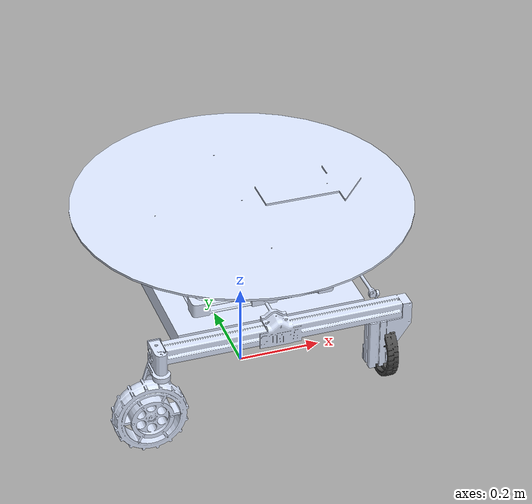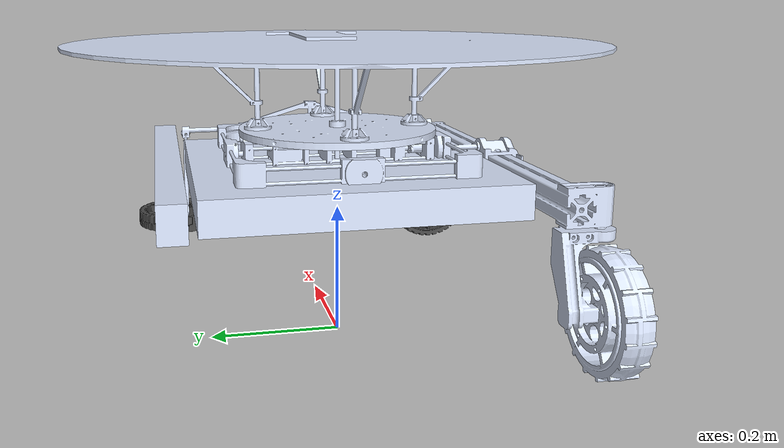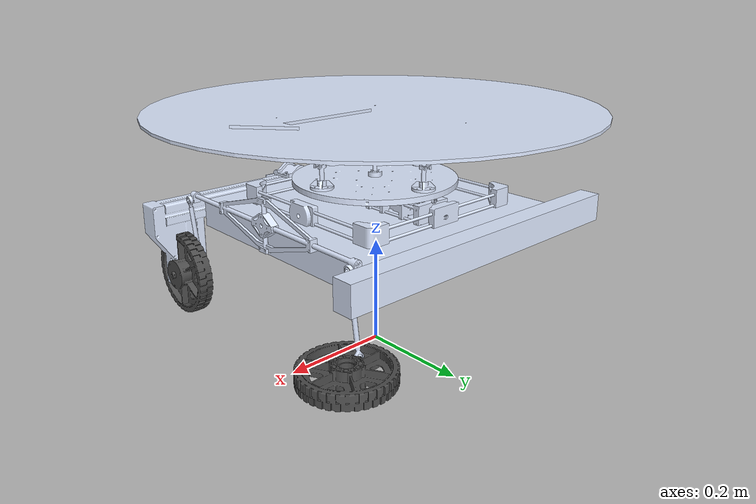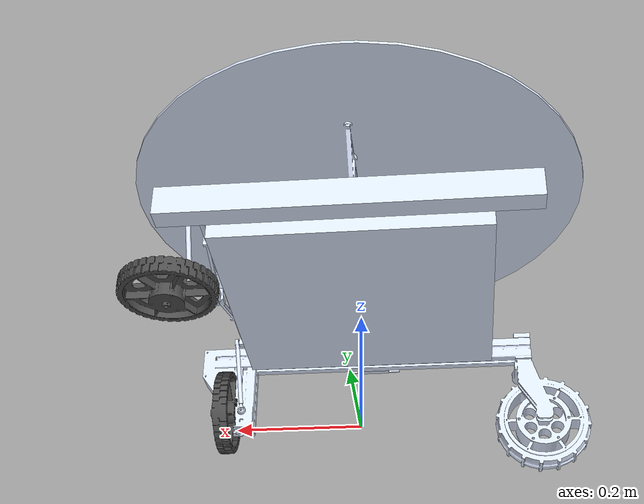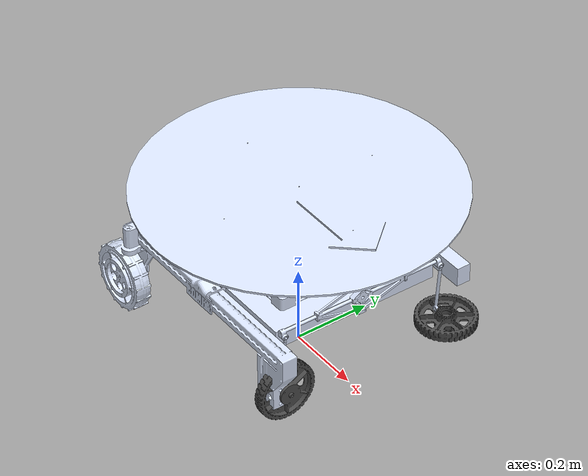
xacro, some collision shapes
<?xml version="1.0" encoding="utf-8"?>
<robot xmlns:xacro="http://www.ros.org/wiki/xacro"
  name="compa">

  <!-- To import ball joint, camera and more -->
  <xacro:include filename="common_properties.urdf.xacro" />
  <xacro:include filename="compa_gazebo.urdf.xacro" />

  <!-- Base -->
  <link name="base_footprint" />

  <joint name="base_joint" type="fixed">
      <parent link="base_footprint" />
      <child link="base_link" />
      <origin xyz="0 0 0.25042" rpy="0 0 0"/>
  </joint>

  <link name="base_link">
    <xacro:box_inertia m="4.77" x="0.45" y="0.45" z="0.05"
                    o_xyz="0 0 0" o_rpy="0 0 ${-pi/2}" />
    <visual>
      <origin
        xyz="0 0 0"
        rpy="0 0 ${-pi/2}" />
      <geometry>
        <mesh
          filename="package://compa_description/meshes/base_link.STL" />
      </geometry>
      <material
        name="">
        <color
          rgba="0.866666666666667 0.909803921568627 1 1" />
      </material>
    </visual>
    <collision>
      <origin
        xyz="0 0 0"
        rpy="0 0 ${-pi/2}" />
      <geometry>
        <box size="0.45 0.45 0.05"/>
      </geometry>
    </collision>
  </link>

  <!-- Left Rocker -->
  <link name="left_rocker_link">
    <xacro:box_inertia m="4.36949644437113" x="0.6" y="0.037" z="0.05"
                    o_xyz="0 -0.072 -0.021" o_rpy="0 0 0" />
    <visual>
      <origin
        xyz="0 0 0"
        rpy="0 0 0" />
      <geometry>
        <mesh
          filename="package://compa_description/meshes/left_rocker_link.STL" />
      </geometry>
      <material
        name="">
        <color
          rgba="0.866666666666667 0.909803921568627 1 1" />
      </material>
    </visual>
    <collision>
      <origin
        xyz="0 -0.072 -0.021"
        rpy="0 0 0" />
      <geometry>
        <box size="0.6 0.037 0.05"/>
      </geometry>
    </collision>
  </link>

  <joint name="base_left_rocker_joint"
    type="continuous">
    <origin
      xyz="0 0.184999999999999 0.0360999999999991"
      rpy="0 0 ${-pi}" />
    <parent
      link="base_link" />
    <child
      link="left_rocker_link" />
    <axis
      xyz="0 1 0" />
  </joint>

  <link name="left_wheel_link">
    <xacro:cylinder_inertia m="2.74378098590227" r="0.1075" h="0.083"
                        o_xyz="0 0 0"
                        o_rpy="${pi/2} 0 0" />
    <visual>
      <origin
        xyz="-0.001 -0.098 0"
        rpy="0 0 0" />
      <geometry>
        <mesh
          filename="package://compa_description/meshes/left_wheel_link.STL" />
      </geometry>
      <material
        name="">
        <color
          rgba="0.298039215686275 0.298039215686275 0.298039215686275 1" />
      </material>
    </visual>
    <collision>
      <origin
        xyz="0 0 0"
        rpy="${pi/2} 0 0" />
      <geometry>
        <cylinder radius="0.1075" length="0.083" />
      </geometry>
    </collision>
  </link>

  <joint name="left_rocker_left_wheel_joint"
    type="continuous">
    <origin
      xyz="-0.27114 -0.14572 -0.1442"
      rpy="3.1416 0 0" />
    <parent
      link="left_rocker_link" />
    <child
      link="left_wheel_link" />
    <axis
      xyz="0 1 0" />
  </joint>

  <link name="left_caster_wheel_link">
    <xacro:cylinder_inertia m="5.0" r="0.087" h="0.05"
                        o_xyz="0 0 0" o_rpy="${pi/2} 0 0" />
    <collision>
      <origin
        xyz="0 0 0"
        rpy="${pi/2} 0 0" />
      <geometry>
        <cylinder radius="0.087" length="0.05" />
      </geometry>
    </collision>
  </link>

  <joint name="left_rocker_left_caster_wheel_joint"
    type="continuous">
    <origin
      xyz="0.315 -0.10422 -0.1647"
      rpy="3.1416 0 0" />
    <parent
      link="left_rocker_link" />
    <child
      link="left_caster_wheel_link" />
    <axis
      xyz="0 1 0" />
  </joint>

  <!-- Right Rocker -->
  <link name="right_rocker_link">
    <xacro:box_inertia m="4.36949644437113" x="0.6" y="0.037" z="0.05"
                    o_xyz="0 0.072 -0.021" o_rpy="0 0 0" />
    <visual>
      <origin
        xyz="0 0 0"
        rpy="0 0 0" />
      <geometry>
        <mesh
          filename="package://compa_description/meshes/right_rocker_link.STL" />
      </geometry>
      <material
        name="">
        <color
          rgba="0.866666666666667 0.909803921568627 1 1" />
      </material>
    </visual>
    <collision>
      <origin
        xyz="0 0.072 -0.021"
        rpy="0 0 0" />
      <geometry>
        <box size="0.6 0.037 0.05"/>
      </geometry>
    </collision>
  </link>

  <joint name="base_right_rocker_joint"
    type="continuous">
    <origin
      xyz="0 -0.185 0.0361"
      rpy="0 0 ${-pi}" />
    <parent
      link="base_link" />
    <child
      link="right_rocker_link" />
    <axis
      xyz="0 1 0" />
  </joint>

  <link name="right_wheel_link">
    <xacro:cylinder_inertia m="2.74378098590227" r="0.1075" h="0.083"
                        o_xyz="0 0 0"
                        o_rpy="${pi/2} 0 0" />
    <visual>
      <origin
        xyz="-0.001 0.098 0"
        rpy="0 0 ${pi}" />
      <geometry>
        <mesh
          filename="package://compa_description/meshes/right_wheel_link.STL" />
      </geometry>
      <material
        name="">
        <color
          rgba="0.298039215686275 0.298039215686275 0.298039215686275 1" />
      </material>
    </visual>
    <collision>
      <origin
        xyz="0 0 0"
        rpy="${pi/2} 0 0" />
      <geometry>
        <cylinder radius="0.1075" length="0.083" />
      </geometry>
    </collision>
  </link>

  <joint name="right_rocker_right_wheel_joint"
    type="continuous">
    <origin
      xyz="-0.27114 0.14572 -0.1442"
      rpy="0 0 ${pi}" />
    <parent
      link="right_rocker_link" />
    <child
      link="right_wheel_link" />
    <axis
      xyz="0 1 0" />
  </joint>

  <link name="right_caster_wheel_link">
    <xacro:cylinder_inertia m="5.0" r="0.087" h="0.05"
                        o_xyz="0 0 0" o_rpy="${pi/2} 0 0" />
    <collision>
      <origin
        xyz="0 0 0"
        rpy="${pi/2} 0 0" />
      <geometry>
        <cylinder radius="0.087" length="0.05" />
      </geometry>
    </collision>
  </link>

  <joint name="right_rocker_right_caster_wheel_joint"
    type="continuous">
    <origin
      xyz="0.315 0.10422 -0.1647"
      rpy="3.1416 0 0" />
    <parent
      link="right_rocker_link" />
    <child
      link="right_caster_wheel_link" />
    <axis
      xyz="0 1 0" />
  </joint>

  <!-- Gimbal -->
  <link name="roll_link">
    <xacro:box_inertia m="0.944517139921142" x="0.35" y="0.35" z="0.05"
                    o_xyz="0 0 0" o_rpy="0 0 0" />
    <visual>
      <origin
        xyz="0 0 0"
        rpy="0 0 0" />
      <geometry>
        <mesh
          filename="package://compa_description/meshes/roll_link.STL" />
      </geometry>
      <material
        name="">
        <color
          rgba="0.866666666666667 0.909803921568627 1 1" />
      </material>
    </visual>
    <collision>
      <origin
        xyz="0 0 0"
        rpy="0 0 0" />
      <geometry>
        <box size="0.35 0.35 0.05"/>
      </geometry>
    </collision>
  </link>

  <joint name="base_roll_joint"
    type="continuous">
    <origin
      xyz="0 0 0.03826"
      rpy="${-pi} 0 0" />
    <parent
      link="base_link" />
    <child
      link="roll_link" />
    <axis
      xyz="-1 0 0" />
  </joint>

  <link name="pitch_link">
    <inertial>
      <origin
        xyz="-1.53612491524818E-06 0.0452818711897623 -0.00479118208676022"
        rpy="0 0 0" />
      <mass
        value="0.373399633584383" />
      <inertia
        ixx="0.000245121023174029"
        ixy="-1.04461141223475E-09"
        ixz="-5.02589593844006E-10"
        iyy="0.000177685960624184"
        iyz="-2.52895140798418E-05"
        izz="0.000294726650760256" />
    </inertial>
    <visual>
      <origin
        xyz="0 0 0"
        rpy="0 0 0" />
      <geometry>
        <mesh
          filename="package://compa_description/meshes/pitch_link.STL" />
      </geometry>
      <material
        name="">
        <color
          rgba="0.866666666666667 0.909803921568627 1 1" />
      </material>
    </visual>
    <collision>
      <origin
        xyz="0 0 0"
        rpy="0 0 0" />
      <geometry>
        <box size="0.07 0.3 0.05"/>
      </geometry>
    </collision>
  </link>

  <joint name="roll_pitch_joint"
    type="continuous">
    <origin
      xyz="0.0035 0 0"
      rpy="3.1416 0 ${pi}" />
    <parent
      link="roll_link" />
    <child
      link="pitch_link" />
    <axis
      xyz="0 1 0" />
  </joint>

  <link name="yaw_plate_link">
    <inertial>
      <origin
        xyz="-0.00447913610788967 2.41196326362311E-05 -0.127371508973676"
        rpy="0 0 0" />
      <mass
        value="4.77359574593992" />
      <inertia
        ixx="0.137280882823545"
        ixy="2.12673978923993E-05"
        ixz="0.000121233585196392"
        iyy="0.141251293392401"
        iyz="-6.47537750501791E-07"
        izz="0.27812043683305" />
    </inertial>
    <visual>
      <origin
        xyz="0 0 0"
        rpy="${pi} 0 ${pi}" />
      <geometry>
        <mesh
          filename="package://compa_description/meshes/yaw_plate_link.STL" />
      </geometry>
      <material
        name="">
        <color
          rgba="0.866666666666667 0.909803921568627 1 1" />
      </material>
    </visual>
    <collision>
      <origin
        xyz="0 0 -0.127371508973676"
        rpy="${pi} 0 ${pi}" />
      <geometry>
        <cylinder radius="0.4" length="0.01"/>
      </geometry>
    </collision>
  </link>

  <joint name="pitch_yaw_plate_joint"
    type="continuous">
    <origin
      xyz="0 0 0.0375"
      rpy="${pi} 0 ${pi}" />
    <parent
      link="pitch_link" />
    <child
      link="yaw_plate_link" />
    <axis
      xyz="0 0 -1" />
  </joint>

  <!-- Dummy link to visualize yaw axis -->
  <link name="yaw_dummy_link">
    <inertial>
      <mass value="0.001"/>
      <inertia ixx="1e-6" iyy="1e-6" izz="1e-6" ixy="0" ixz="0" iyz="0"/>
    </inertial>

    <visual name="yaw_dummy_visual">
      <geometry>
        <sphere radius="0.001"/>
      </geometry>
    </visual>

    <collision name="yaw_dummy_collision">
      <geometry>
        <sphere radius="0.03"/>
      </geometry>
    </collision>
  </link>

  <joint name="yaw_plate_fixed_joint" type="revolute">
    <origin xyz="0 0 0.075" rpy="${pi} 0 0"/>
    <parent link="yaw_plate_link"/>
    <child  link="yaw_dummy_link"/>
    <axis xyz="0 0 1"/>
    <!-- Lock at 0 lower=upper=0; add large effort + damping so it stays put -->
    <limit lower="0" upper="0" effort="1e6" velocity="0"/>
    <dynamics damping="100" friction="1.0"/>
  </joint>

  <!-- ROCKER LINKS -->
  <link name="leverage_link">
    <inertial>
      <origin
        xyz="-0.0117745961443602 -3.98443129349599E-08 -0.000252346332911095"
        rpy="0 0 0" />
      <mass
        value="0.16962532718169" />
      <inertia
        ixx="0.00130897914050679"
        ixy="3.29957052469139E-12"
        ixz="-4.97883603410576E-09"
        iyy="5.88902413778525E-05"
        iyz="5.89893406244419E-11"
        izz="0.00125385800443425" />
    </inertial>
    <visual>
      <origin
        xyz="0 0 0"
        rpy="0 0 0" />
      <geometry>
        <mesh
          filename="package://compa_description/meshes/leverage_link.STL" />
      </geometry>
      <material
        name="">
        <color
          rgba="0.866666666666667 0.909803921568627 1 1" />
      </material>
    </visual>
    <collision>
      <origin
        xyz="0 0 0"
        rpy="0 0 0" />
      <geometry>
        <box size="0.01 0.45 0.07"/>
      </geometry>
    </collision>
  </link>

  <joint name="base_leverage_joint"
    type="revolute">
    <origin
      xyz="0.2332 0 0.03826"
      rpy="0 0 ${-pi}" />
    <parent
      link="base_link" />
    <child
      link="leverage_link" />
    <axis
      xyz="-1 0 0" />
    <limit effort="20" velocity="1.0" lower="${-pi/12}" upper="${pi/12}"/>
  </joint>

  <!-- Right Side Rocker -->
  <link name="right_rod_sphere1_link">
    <inertial>
      <origin
        xyz="0.00536589340030799 -0.00133128905926821 -0.00337989932446242"
        rpy="0 0 0" />
      <mass
        value="0.0013014428485605" />
      <inertia
        ixx="1.60882150250237E-08"
        ixy="-5.10245749664677E-18"
        ixz="-4.13590306276514E-24"
        iyy="2.14375515430229E-08"
        iyz="3.44035962441191E-18"
        izz="1.60882150250237E-08" />
    </inertial>
    <visual>
      <origin
        xyz="0 0 0"
        rpy="0 0 0" />
      <geometry>
        <mesh
          filename="package://compa_description/meshes/sphere_link.STL" />
      </geometry>
      <material
        name="">
        <color
          rgba="0.866666666666667 0.909803921568627 1 1" />
      </material>
    </visual>
    <collision>
      <origin
        xyz="0 0 0"
        rpy="0 0 0" />
      <geometry>
        <sphere radius="0.0055"/>
      </geometry>
    </collision>
  </link>

  <joint name="leverage_right_rod_sphere1_joint"
    type="fixed">
    <origin
      xyz="-0.024 0.222 -0.0064"
      rpy="0 0 1.5708" />
    <parent
      link="leverage_link" />
    <child
      link="right_rod_sphere1_link" />
  </joint>

  <link name="right_rod_link">
    <inertial>
      <origin
        xyz="0.00807999415461744 0.00132856456720257 -0.0766613810604778"
        rpy="0 0 0" />
      <mass
        value="0.0151753641367165" />
      <inertia
        ixx="3.27980169789714E-05"
        ixy="-5.95699180514602E-08"
        ixz="3.43503884989101E-06"
        iyy="3.31503405889854E-05"
        iyz="5.65386918327902E-07"
        izz="5.68009921841292E-07" />
    </inertial>
    <visual>
      <origin
        xyz="0 0 -0.07056"
        rpy="0 0 ${pi/2}" />
      <geometry>
        <mesh
          filename="package://compa_description/meshes/rod_link.STL" />
      </geometry>
      <material
        name="">
        <color
          rgba="0.866666666666667 0.909803921568627 1 1" />
      </material>
    </visual>
    <collision>
      <origin
        xyz="0 0 -0.07056"
        rpy="0 0 ${pi/2}" />
      <geometry>
        <cylinder radius="0.0035" length="${2*0.07056 - 0.007}"/>
      </geometry>
    </collision>
  </link>

  <xacro:ball_joint parent="right_rod_sphere1_link" child="right_rod_link"
                   joint_prefix="right_rod_sphere1" roll_offset="-0.1075" pitch_offset="-0.0171" />

  <link name="tmp_right_rod_sphere2_link">
    <inertial>
      <mass value="0.001"/>
      <origin xyz="0 0 0" rpy="0 0 0"/>
      <inertia ixx="0.000001" ixy="0" ixz="0" iyy="0.000001" iyz="0" izz="0.000001"/>
    </inertial>
  </link>

  <xacro:ball_joint parent="right_rod_link" child="tmp_right_rod_sphere2_link"
                   joint_prefix="tmp_right_rod_sphere2" z_offset="${-2*0.07056}" />

  <link name="right_rod_sphere2_link">
    <inertial>
      <origin
        xyz="0 0 0"
        rpy="0 0 0" />
      <mass
        value="0.0013014428485605" />
      <inertia
        ixx="1.60882150250237E-08"
        ixy="3.36977260250646E-23"
        ixz="4.13590306276514E-25"
        iyy="2.14375515430229E-08"
        iyz="-4.41668705567546E-23"
        izz="1.60882150250237E-08" />
    </inertial>
    <visual>
      <origin
        xyz="0 0 0"
        rpy="0 0 0" />
      <geometry>
        <mesh
          filename="package://compa_description/meshes/sphere_link.STL" />
      </geometry>
      <material
        name="">
        <color
          rgba="0.866666666666667 0.909803921568627 1 1" />
      </material>
    </visual>
    <collision>
      <origin
        xyz="0 0 0"
        rpy="0 0 0" />
      <geometry>
        <sphere radius="0.0055"/>
      </geometry>
    </collision>
  </link>

  <joint name="right_rocker_rod_sphere2_joint"
    type="fixed">
    <origin
      xyz="-0.24206 0.0394 -0.14451"
      rpy="0 0 0" />
    <parent
      link="right_rocker_link" />
    <child
      link="right_rod_sphere2_link" />
  </joint>

  <!-- Left Side Rocker -->
  <link name="left_rod_sphere1_link">
    <inertial>
      <origin
        xyz="0.00532991500866456 0.00018815731486499 0.00563172775996076"
        rpy="0 0 0" />
      <mass
        value="0.0013014428485605" />
      <inertia
        ixx="1.60882150250237E-08"
        ixy="4.22440977042159E-18"
        ixz="-1.65436122510606E-24"
        iyy="2.14375515430229E-08"
        iyz="4.47501438672121E-18"
        izz="1.60882150250237E-08" />
    </inertial>
    <visual>
      <origin
        xyz="0 0 0"
        rpy="0 0 0" />
      <geometry>
        <mesh
          filename="package://compa_description/meshes/sphere_link.STL" />
      </geometry>
      <material
        name="">
        <color
          rgba="0.866666666666667 0.909803921568627 1 1" />
      </material>
    </visual>
    <collision>
      <origin
        xyz="0 0 0"
        rpy="0 0 0" />
      <geometry>
        <sphere radius="0.0055"/>
      </geometry>
    </collision>
  </link>

  <joint name="leverage_left_rod_sphere1_joint"
    type="fixed">
    <origin
      xyz="-0.024 -0.222 -0.0064"
      rpy="0 0 1.5708" />
    <parent
      link="leverage_link" />
    <child
      link="left_rod_sphere1_link" />
  </joint>

  <link name="left_rod_link">
    <inertial>
      <origin
        xyz="0.00658807175193704 0.00108313190898462 -0.0625056704234719"
        rpy="0 0 0" />
      <mass
        value="0.0151753392872247" />
      <inertia
        ixx="3.27979872110313E-05"
        ixy="-5.95691313888852E-08"
        ixz="3.43504152367061E-06"
        iyy="3.31503109311604E-05"
        iyz="5.65357219897624E-07"
        izz="5.6800600012109E-07" />
    </inertial>
    <visual>
      <origin
        xyz="0 0 -0.07056"
        rpy="0 0 ${pi/2}" />
      <geometry>
        <mesh
          filename="package://compa_description/meshes/rod_link.STL" />
      </geometry>
      <material
        name="">
        <color
          rgba="0.866666666666667 0.909803921568627 1 1" />
      </material>
    </visual>
    <collision>
      <origin
        xyz="0 0 -0.07056"
        rpy="0 0 ${pi/2}" />
      <geometry>
        <cylinder radius="0.0035" length="${2*0.07056 - 0.007}"/>
      </geometry>
    </collision>
  </link>

  <xacro:ball_joint parent="left_rod_sphere1_link" child="left_rod_link"
                   joint_prefix="left_rod_sphere1" roll_offset="-0.1075" pitch_offset="0.0171" />

  <link name="tmp_left_rod_sphere2_link">
    <inertial>
      <mass value="0.001"/>
      <origin xyz="0 0 0" rpy="0 0 0"/>
      <inertia ixx="0.000001" ixy="0" ixz="0" iyy="0.000001" iyz="0" izz="0.000001"/>
    </inertial>
  </link>

  <xacro:ball_joint parent="left_rod_link" child="tmp_left_rod_sphere2_link"
                   joint_prefix="tmp_left_rod_sphere2" z_offset="${-2*0.07056}" />

  <link name="left_rod_sphere2_link">
    <inertial>
      <origin
        xyz="0 0 0"
        rpy="0 0 0" />
      <mass
        value="0.0013014428485605" />
      <inertia
        ixx="1.60882150250237E-08"
        ixy="4.03175187101389E-23"
        ixz="1.34416849539867E-24"
        iyy="2.14375515430229E-08"
        iyz="-9.48287106740403E-24"
        izz="1.60882150250237E-08" />
    </inertial>
    <visual>
      <origin
        xyz="0 0 0"
        rpy="0 0 0" />
      <geometry>
        <mesh
          filename="package://compa_description/meshes/sphere_link.STL" />
      </geometry>
      <material
        name="">
        <color
          rgba="0.866666666666667 0.909803921568627 1 1" />
      </material>
    </visual>
    <collision>
      <origin
        xyz="0 0 0"
        rpy="0 0 0" />
      <geometry>
        <sphere radius="0.0055"/>
      </geometry>
    </collision>
  </link>

  <joint name="left_rocker_rod_sphere2_joint"
    type="fixed">
    <origin
      xyz="-0.24206 -0.0394 -0.14451"
      rpy="0 0 0" />
    <parent
      link="left_rocker_link" />
    <child
      link="left_rod_sphere2_link" />
  </joint>

</robot>

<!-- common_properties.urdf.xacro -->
<robot xmlns:xacro="http://www.ros.org/wiki/xacro">

    <xacro:macro name="ball_joint" params="parent child joint_prefix
        x_offset:=0 y_offset:=0 z_offset:=0
        roll_offset:=0 pitch_offset:=0 yaw_offset:=0
        mass:=0.001 r:=0.01 lim:=1.57">

        <!-- Isotropic inertia for a solid sphere: I = (2/5) m r^2  -->
        <xacro:property name="I_diag" value="${0.4*mass*(r**2)}"/>

        <link name="${joint_prefix}_t1">
            <inertial>
            <mass value="${mass}"/>
            <origin xyz="0 0 0" rpy="0 0 0"/>
            <inertia ixx="${I_diag}" ixy="0" ixz="0" iyy="${I_diag}" iyz="0" izz="${I_diag}"/>
            </inertial>
        </link>

        <link name="${joint_prefix}_t2">
            <inertial>
            <mass value="${mass}"/>
            <origin xyz="0 0 0" rpy="0 0 0"/>
            <inertia ixx="${I_diag}" ixy="0" ixz="0" iyy="${I_diag}" iyz="0" izz="${I_diag}"/>
            </inertial>
        </link>

        <link name="${joint_prefix}_t3">
            <inertial>
            <mass value="${mass}"/>
            <origin xyz="0 0 0" rpy="0 0 0"/>
            <inertia ixx="${I_diag}" ixy="0" ixz="0" iyy="${I_diag}" iyz="0" izz="${I_diag}"/>
            </inertial>
        </link>

        <joint name="${joint_prefix}_rev_x" type="revolute">
            <parent link="${parent}"/><child link="${joint_prefix}_t1"/>
            <origin xyz="${x_offset} ${y_offset} ${z_offset}" rpy="${roll_offset} 0 0"/><axis xyz="1 0 0"/>
            <limit lower="-${lim}" upper="${lim}" effort="1" velocity="1"/>
        </joint>

        <joint name="${joint_prefix}_rev_y" type="revolute">
            <parent link="${joint_prefix}_t1"/><child link="${joint_prefix}_t2"/>
            <origin xyz="0 0 0" rpy="0 ${pitch_offset} 0"/><axis xyz="0 1 0"/>
            <limit lower="-${lim}" upper="${lim}" effort="1" velocity="1"/>
        </joint>

        <joint name="${joint_prefix}_rev_z" type="continuous">
            <parent link="${joint_prefix}_t2"/><child link="${joint_prefix}_t3"/>
            <origin xyz="0 0 0" rpy="0 0 ${yaw_offset}"/><axis xyz="0 0 1"/>
        </joint>

        <joint name="${joint_prefix}_fixed" type="fixed">
            <parent link="${joint_prefix}_t3"/><child link="${child}"/>
            <origin xyz="0 0 0" rpy="0 0 0"/>
        </joint>
    </xacro:macro>

    <xacro:macro name="box_inertia" params="m x y z o_xyz o_rpy">
        <inertial>
            <mass value="${m}" />
            <origin xyz="${o_xyz}" rpy="${o_rpy}" />
            <inertia ixx="${(m/12) * (y*y + z*z)}" ixy="0" ixz="0"
                     iyy="${(m/12) * (x*x + z*z)}" iyz="0"
                     izz="${(m/12) * (y*y + x*x)}" />
        </inertial>
    </xacro:macro>

    <xacro:macro name="sphere_inertia" params="m r o_xyz o_rpy">
        <inertial>
            <mass value="${m}" />
            <origin xyz="${o_xyz}" rpy="${o_rpy}" />
            <inertia ixx="${(2/5) * m * r*r}" ixy="0" ixz="0"
                    iyy="${(2/5) * m * r*r}" iyz="0"
                    izz="${(2/5) * m * r*r}" />
        </inertial>
    </xacro:macro>

    <xacro:macro name="cylinder_inertia" params="m r h o_xyz:='0 0 0' o_rpy:='0 0 0'">
        <inertial>
            <mass value="${m}" />
            <origin xyz="${o_xyz}" rpy="${o_rpy}" />
            <inertia ixx="${(m/12) * (3*r*r + h*h)}" ixy="0" ixz="0"
                     iyy="${(m/12) * (3*r*r + h*h)}" iyz="0"
                     izz="${(m/2) * (r*r)}" />
        </inertial>
    </xacro:macro>

</robot>
